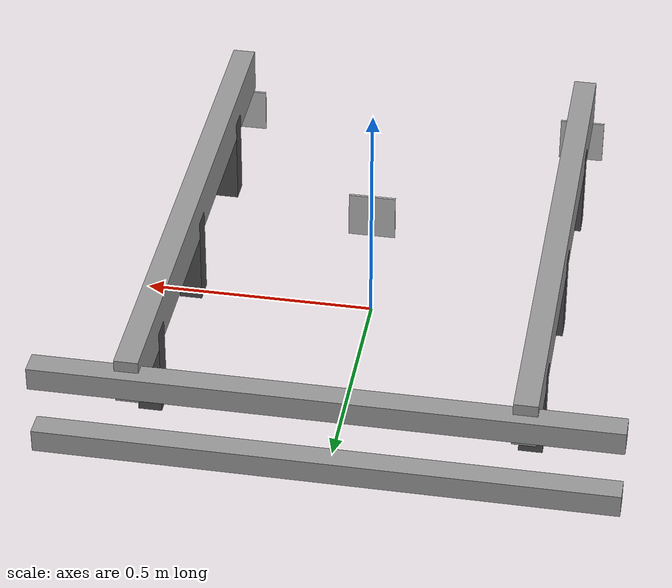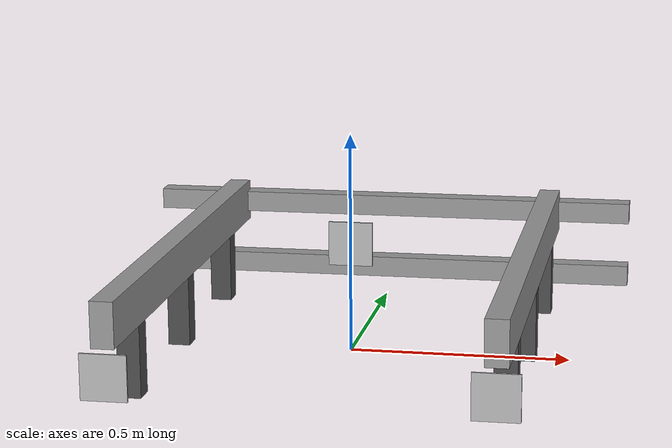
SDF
<?xml version='1.0'?>
<sdf version='1.9'>
  <model name='docking_april'>
    <link name='base_link'>
      <pose>0 0 0.1 0 3.14 0</pose>

      <visual name='base_plate_visual'>
        <pose>-0.4 0 -0.11 0 1.57 0</pose>
        <geometry>
          <box>
            <size>0.1 1.2 0.05</size>
          </box>
        </geometry>
        <material>
          <script>
            <uri>file://media/materials/scripts/gazebo.material</uri>
            <name>Gazebo/Gray</name>
          </script>
        </material>
      </visual>
      <collision name='base_plate_collision'>
        <pose>-0.4 0 -0.11 0 1.57 0</pose>
        <geometry>
          <box>
            <size>0.1 1.2 0.05</size>
          </box>
        </geometry>
      </collision>

      <visual name='base_plate_visual2'>
        <pose>0.4 0 -0.11 0 1.57 0</pose>
        <geometry>
          <box>
            <size>0.1 1.2 0.05</size>
          </box>
        </geometry>
        <material>
          <script>
            <uri>file://media/materials/scripts/gazebo.material</uri>
            <name>Gazebo/Gray</name>
          </script>
        </material>
      </visual>
      <collision name='base_plate_collision2'>
        <pose>0.4 0 -0.11 0 1.57 0</pose>
        <geometry>
          <box>
            <size>0.1 1.2 0.05</size>
          </box>
        </geometry>
      </collision>

      <visual name='pillar_1_visual'>
        <pose>0.4 -0.4 0.0 0 0 0</pose>
        <geometry>
          <box>
            <size>0.05 0.05 0.2</size>
          </box>
        </geometry>
        <material>
          <script>
            <uri>file://media/materials/scripts/gazebo.material</uri>
            <name>Gazebo/DarkGrey</name>
          </script>
        </material>
      </visual>
      <collision name='pillar_1_collision'>
        <pose>0.4 -0.4 0.0 0 0 0</pose>
        <geometry>
          <box>
            <size>0.05 0.05 0.2</size>
          </box>
        </geometry>
      </collision>

      <visual name='pillar_2_visual'>
        <pose>0.4 0.0 0.0 0 0 0</pose>
        <geometry>
          <box>
            <size>0.05 0.05 0.2</size>
          </box>
        </geometry>
        <material>
          <script>
            <uri>file://media/materials/scripts/gazebo.material</uri>
            <name>Gazebo/DarkGrey</name>
          </script>
        </material>
      </visual>
      <collision name='pillar_2_collision'>
        <pose>0.4 0.0 0.0 0 0 0</pose>
        <geometry>
          <box>
            <size>0.05 0.05 0.2</size>
          </box>
        </geometry>
      </collision>

      <visual name='pillar_3_visual'>
        <pose>0.4 0.4 0.0 0 0 0</pose>
        <geometry>
          <box>
            <size>0.05 0.05 0.2</size>
          </box>
        </geometry>
        <material>
          <script>
            <uri>file://media/materials/scripts/gazebo.material</uri>
            <name>Gazebo/DarkGrey</name>
          </script>
        </material>
      </visual>
      <collision name='pillar_3_collision'>
        <pose>0.4 0.4 0.0 0 0 0</pose>
        <geometry>
          <box>
            <size>0.05 0.05 0.2</size>
          </box>
        </geometry>
      </collision>

  <!-- Second row of pillars (row at x = -0.4, mirrored to the first row). -->
      <visual name='pillar_4_visual'>
        <pose>-0.4 -0.4 0.0 0 0 0</pose>
        <geometry>
          <box>
            <size>0.05 0.05 0.2</size>
          </box>
        </geometry>
        <material>
          <script>
            <uri>file://media/materials/scripts/gazebo.material</uri>
            <name>Gazebo/DarkGrey</name>
          </script>
        </material>
      </visual>
      <collision name='pillar_4_collision'>
        <pose>-0.4 -0.4 0.0 0 0 0</pose>
        <geometry>
          <box>
            <size>0.05 0.05 0.2</size>
          </box>
        </geometry>
      </collision>

      <visual name='pillar_5_visual'>
        <pose>-0.4 0.0 0.0 0 0 0</pose>
        <geometry>
          <box>
            <size>0.05 0.05 0.2</size>
          </box>
        </geometry>
        <material>
          <script>
            <uri>file://media/materials/scripts/gazebo.material</uri>
            <name>Gazebo/DarkGrey</name>
          </script>
        </material>
      </visual>
      <collision name='pillar_5_collision'>
        <pose>-0.4 0.0 0.0 0 0 0</pose>
        <geometry>
          <box>
            <size>0.05 0.05 0.2</size>
          </box>
        </geometry>
      </collision>

      <visual name='pillar_6_visual'>
        <pose>-0.4 0.4 0.0 0 0 0</pose>
        <geometry>
          <box>
            <size>0.05 0.05 0.2</size>
          </box>
        </geometry>
        <material>
          <script>
            <uri>file://media/materials/scripts/gazebo.material</uri>
            <name>Gazebo/DarkGrey</name>
          </script>
        </material>
      </visual>
      <collision name='pillar_6_collision'>
        <pose>-0.4 0.4 0.0 0 0 0</pose>
        <geometry>
          <box>
            <size>0.05 0.05 0.2</size>
          </box>
        </geometry>
      </collision>

  <!-- Back plates (vertical plates behind the pillars).
       Two thin box plates at y = +0.6 and z offsets -0.11 and +0.05 respectively.
       Each plate is 0.05 x 1.2 x 0.05 m and uses Gazebo gray. -->
      <visual name='back_plate1_visual'>
        <pose>0 0.6 -0.11 0 0 1.57</pose>
        <geometry>
          <box>
            <size>0.05 1.2 0.05</size>
          </box>
        </geometry>
        <material>
          <script>
            <uri>file://media/materials/scripts/gazebo.material</uri>
            <name>Gazebo/Gray</name>
          </script>
        </material>
      </visual>
      <collision name='back_plate1_collision'>
        <pose>0 0.6 -0.11 0 0 1.57</pose>
        <geometry>
          <box>
            <size>0.05 1.2 0.05</size>
          </box>
        </geometry>
      </collision>
      <visual name='back_plate2_visual'>
        <pose>0 0.6 0.05 0 0 1.57</pose>
        <geometry>
          <box>
            <size>0.05 1.2 0.05</size>
          </box>
        </geometry>
        <material>
          <script>
            <uri>file://media/materials/scripts/gazebo.material</uri>
            <name>Gazebo/Gray</name>
          </script>
        </material>
      </visual>
      <collision name='back_plate2_collision'>
        <pose>0 0.6 0.05 0 0 1.57</pose>
        <geometry>
          <box>
            <size>0.05 1.2 0.05</size>
          </box>
        </geometry>
      </collision>

   <visual name='marker_plate'>
     <!-- Pose corresponds to the visual below (x=+0.4, y=-0.6, z=0) with rotations
       that orient the texture toward the expected camera/view direction. -->
     <pose>0.4 -0.6 0 0 3.14 1.57</pose>
        <geometry>
          <!-- thin along X, wide along Y, tall along Z -->
          <box>
            <size>0.005 0.10 0.10</size>
          </box>
        </geometry>
        <material>
  <pbr>
    <metal>
      <albedo_map>model://Apriltag36_11_00000/materials/textures/tag36_11_00000.png</albedo_map>
      <emissive_map>model://Apriltag36_11_00000/materials/textures/tag36_11_00000.png</emissive_map>
      <roughness>1.0</roughness>
      <metalness>0.0</metalness>
    </metal>
  </pbr>
</material>
      </visual>

   <!-- Marker plate 2: mirror image of marker_plate on the opposite X side.
     Uses AprilTag_2 materials and textures. Pose at x = -0.4, y = -0.6. -->
   <visual name='marker_plate2'>
     <!-- Pose corresponds to the visual below (x=-0.4, y=-0.6, z=0). -->
     <pose>-0.4 -0.6 0 0 3.14 1.57</pose>
        <geometry>
          <!-- thin along X, wide along Y, tall along Z -->
          <box>
            <size>0.005 0.10 0.10</size>
          </box>
        </geometry>
        <material>
  <pbr>
    <metal>
      <albedo_map>model://Apriltag36_11_00001/materials/textures/tag36_11_00001.png</albedo_map>
      <emissive_map>model://Apriltag36_11_00001/materials/textures/tag36_11_00001.png</emissive_map>
      <roughness>1.0</roughness>
      <metalness>0.0</metalness>
    </metal>
  </pbr>
</material>
      </visual>

   <!-- Marker plate 3: a third vertical plate centered roughly at the link origin
     (x=0) with a small downward z offset (z=-0.15). Uses AprilTag_3 textures. -->
   <visual name='marker_plate3'>
     <!-- Pose places this plate at x=0, y=0, z=-0.15 and rotates it so the texture is
       visible in the expected viewing direction. -->
     <pose>0 0 -0.15 0 3.14 1.57</pose>
        <geometry>
          <!-- thin along X, wide along Y, tall along Z -->
          <box>
            <size>0.005 0.10 0.10</size>
          </box>
        </geometry>
        <material>
  <pbr>
    <metal>
      <albedo_map>model://Apriltag36_11_00002/materials/textures/tag36_11_00002.png</albedo_map>
      <emissive_map>model://Apriltag36_11_00002/materials/textures/tag36_11_00002.png</emissive_map>
      <roughness>1.0</roughness>
      <metalness>0.0</metalness>
    </metal>
  </pbr>
</material>
      </visual>

    </link>
    <static>1</static>
  </model>
</sdf>
